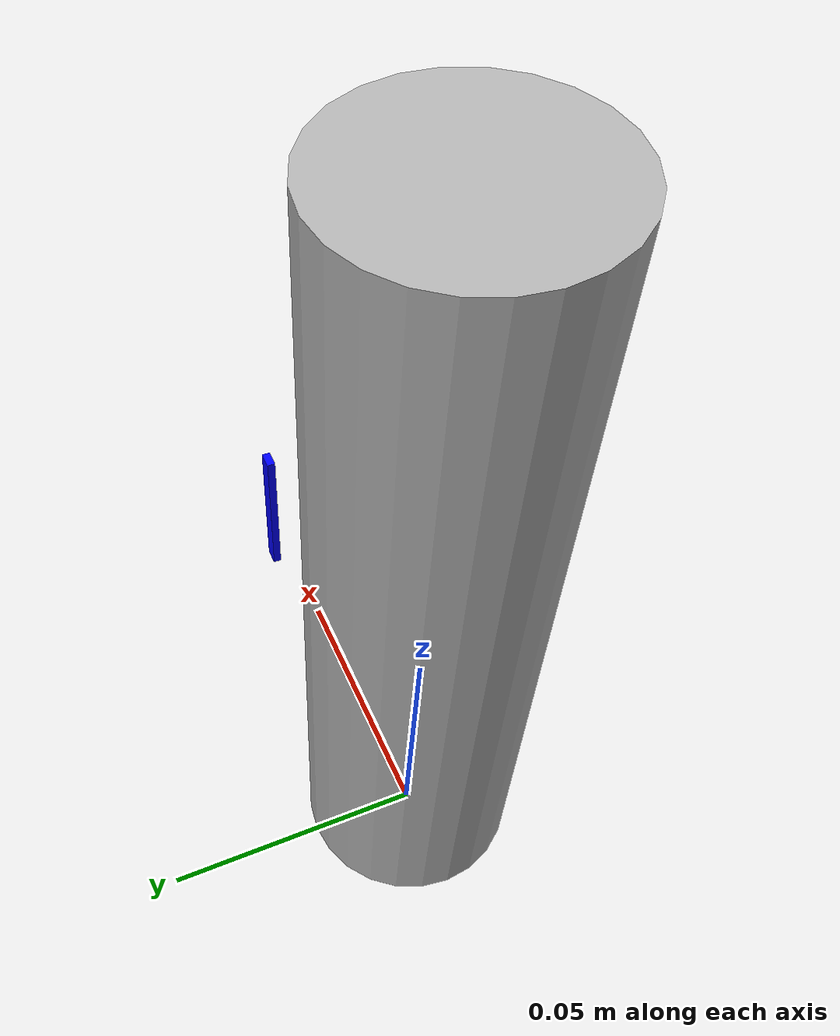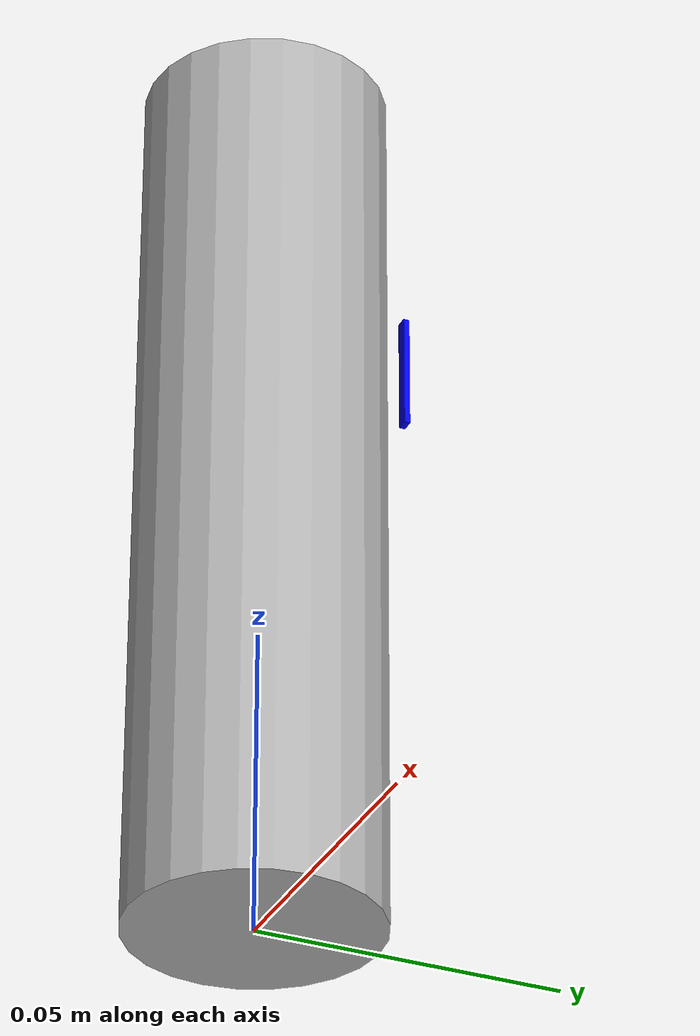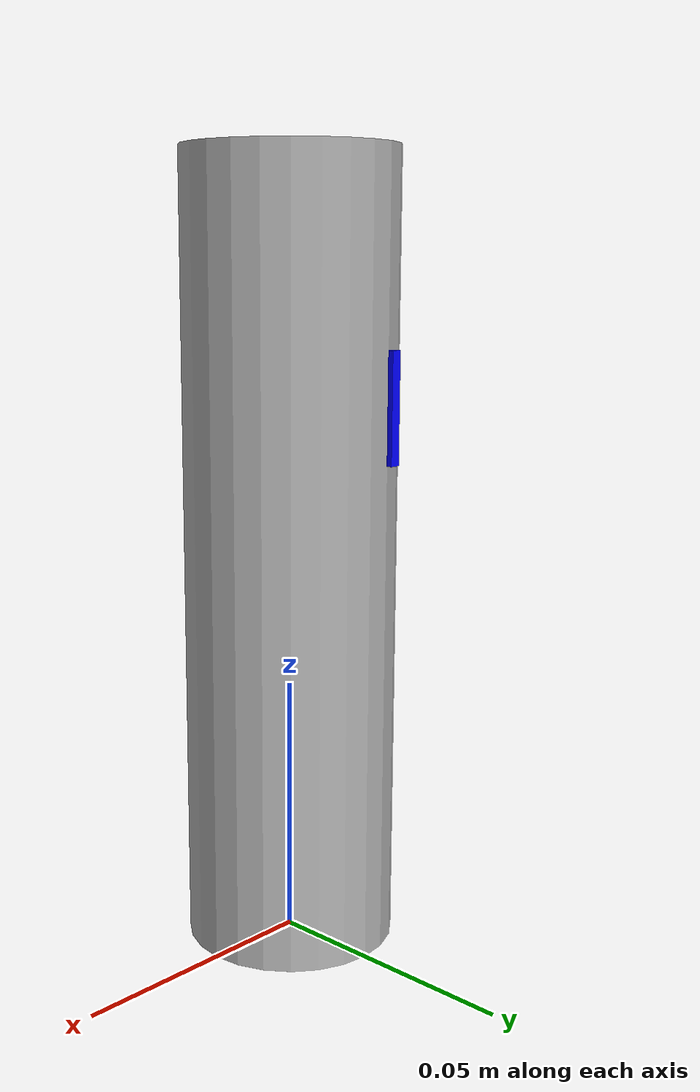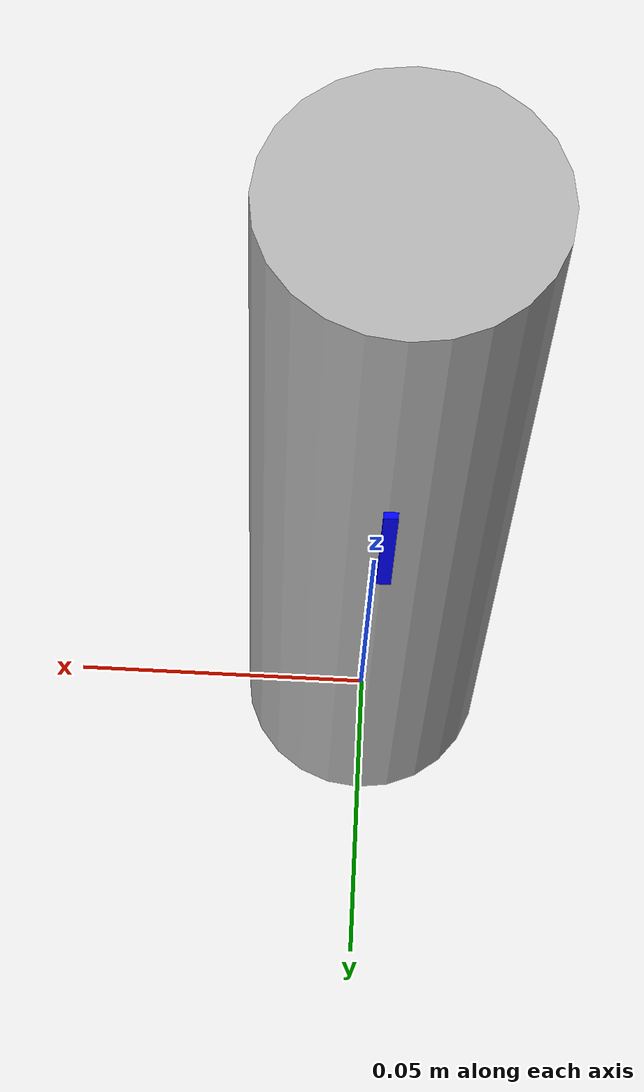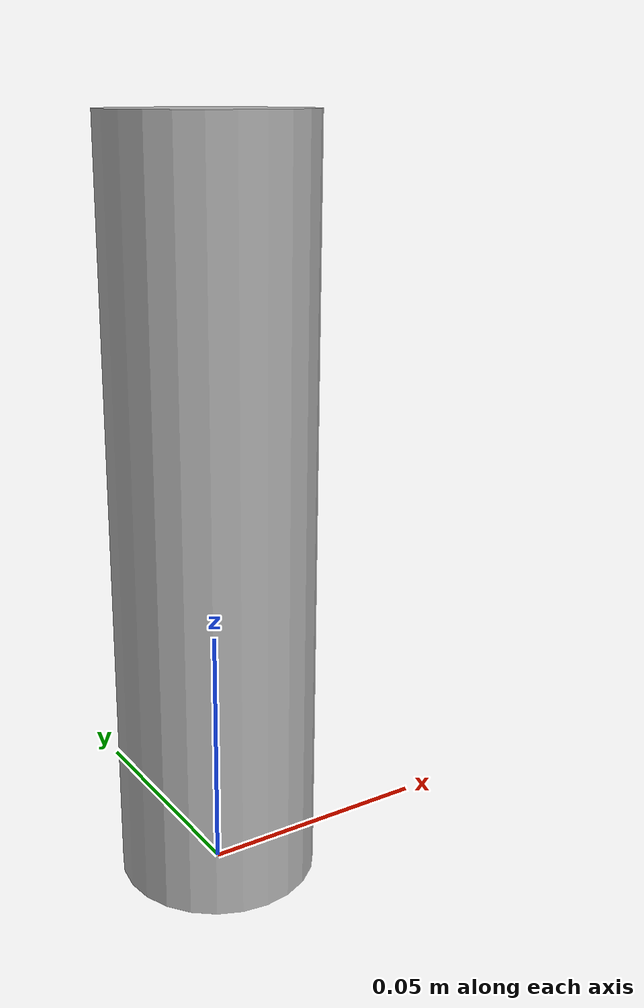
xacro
<?xml version="1.0"?>
<robot xmlns:xacro="http://ros.org/wiki/xacro" name="pipette">
  <xacro:arg name="parent" default="tool0"/>
  <xacro:arg name="serial_port" default="/dev/ttyUSB0"/>
  <xacro:arg name="baudrate" default="115200"/>
  <xacro:arg name="plunger_max" default="1.0"/>
  <xacro:arg name="tip_eject_max" default="1.0"/>
  <xacro:arg name="use_fake_hardware" default="true"/>

  <xacro:include filename="$(find pipette_description)/urdf/pipette_macro.urdf.xacro"/>

  <link name="$(arg parent)"/>
  <xacro:pipette
    name="pipette"
    prefix=""
    parent="$(arg parent)"
    serial_port="$(arg serial_port)"
    baudrate="$(arg baudrate)"
    plunger_max="$(arg plunger_max)"
    tip_eject_max="$(arg tip_eject_max)"
    use_fake_hardware="$(arg use_fake_hardware)"
  />
</robot>

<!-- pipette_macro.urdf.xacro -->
<robot xmlns:xacro="http://ros.org/wiki/xacro">
  <!--
    Static URDF description for pipette tool
    Replace placeholder meshes with your actual CAD files
  -->

  <xacro:macro
    name="pipette"
    params="name
            prefix
            parent
            pipette_mass:=0.200
            xyz:='0 0 0'
            rpy:='0 0 0'"
  >

    <!-- Pipette physical dimensions (adjust based on your CAD) -->
    <xacro:property name="pipette_length" value="0.15"/>  <!-- 15cm length -->
    <xacro:property name="pipette_radius" value="0.02"/>   <!-- 2cm radius -->

    <!-- Main attachment joint -->
    <joint name="${prefix}pipette_attachment_joint" type="fixed">
      <origin xyz="${xyz}" rpy="${rpy}"/>
      <parent link="${parent}"/>
      <child link="${prefix}pipette_base_link"/>
    </joint>

    <!-- Main pipette body -->
    <link name="${prefix}pipette_base_link">
      <visual>
        <origin xyz="0 0 ${pipette_length/2}" rpy="0 0 0"/>
        <geometry>
          <!-- Replace this cylinder with your CAD mesh -->
          <cylinder length="${pipette_length}" radius="${pipette_radius}"/>
        </geometry>
        <material name="pipette_gray">
          <color rgba="0.7 0.7 0.7 1.0"/>
        </material>
      </visual>

      <collision>
        <origin xyz="0 0 ${pipette_length/2}" rpy="0 0 0"/>
        <geometry>
          <!-- Replace this cylinder with simplified collision mesh -->
          <cylinder length="${pipette_length}" radius="${pipette_radius}"/>
        </geometry>
      </collision>

      <inertial>
        <origin xyz="0 0 ${pipette_length/2}" rpy="0 0 0"/>
        <mass value="${pipette_mass}"/>
        <inertia ixx="${pipette_mass * (3 * pipette_radius * pipette_radius + pipette_length * pipette_length) / 12}"
                 ixy="0.0"
                 ixz="0.0"
                 iyy="${pipette_mass * (3 * pipette_radius * pipette_radius + pipette_length * pipette_length) / 12}"
                 iyz="0.0"
                 izz="${pipette_mass * pipette_radius * pipette_radius / 2}"/>
      </inertial>
    </link>

    <!-- LED strip (visual element only) -->
    <joint name="${prefix}led_strip_joint" type="fixed">
      <origin xyz="0 ${pipette_radius + 0.005} ${pipette_length * 0.7}" rpy="0 0 0"/>
      <parent link="${prefix}pipette_base_link"/>
      <child link="${prefix}led_strip_link"/>
    </joint>

    <link name="${prefix}led_strip_link">
      <visual>
        <origin xyz="0 0 0" rpy="0 0 0"/>
        <geometry>
          <box size="0.002 0.001 0.02"/>  <!-- Small LED strip representation -->
        </geometry>
        <material name="led_strip">
          <color rgba="0.0 0.0 1.0 1.0"/>  <!-- Blue when off -->
        </material>
      </visual>
    </link>

    <!-- Conceptual plunger link for ros2_control (no visual representation) -->
    <!-- This represents the internal plunger mechanism -->
    <joint name="${prefix}plunger_joint" type="prismatic">
      <origin xyz="0 0 ${pipette_length}" rpy="0 0 0"/>
      <parent link="${prefix}pipette_base_link"/>
      <child link="${prefix}plunger_link"/>
      <axis xyz="0 0 1"/>  <!-- Z-axis movement (up/down) -->
      <limit effort="10.0" lower="0.0" upper="1.0" velocity="0.1"/>
    </joint>

    <link name="${prefix}plunger_link">
      <!-- No visual/collision geometry - this is handled by hardware interface -->
      <inertial>
        <origin xyz="0 0 0" rpy="0 0 0"/>
        <mass value="0.001"/>  <!-- Minimal mass -->
        <inertia ixx="1E-9" ixy="0.0" ixz="0.0" iyy="1E-9" iyz="0.0" izz="1E-9"/>
      </inertial>
    </link>

    <!-- Conceptual tip ejection link for ros2_control (no visual representation) -->
    <!-- This represents the tip ejection mechanism -->
    <joint name="${prefix}tip_eject_joint" type="prismatic">
      <origin xyz="0 0 ${pipette_length}" rpy="0 0 0"/>
      <parent link="${prefix}pipette_base_link"/>
      <child link="${prefix}tip_eject_link"/>
      <axis xyz="0 0 1"/>  <!-- Z-axis movement (up/down) -->
      <limit effort="5.0" lower="0.0" upper="1.0" velocity="0.1"/>
    </joint>

    <link name="${prefix}tip_eject_link">
      <!-- No visual/collision geometry - this is handled by hardware interface -->
      <inertial>
        <origin xyz="0 0 0" rpy="0 0 0"/>
        <mass value="0.001"/>  <!-- Minimal mass -->
        <inertia ixx="1E-9" ixy="0.0" ixz="0.0" iyy="1E-9" iyz="0.0" izz="1E-9"/>
      </inertial>
    </link>

    <!-- Tool tip reference frame -->
    <joint name="${prefix}pipette_tip_joint" type="fixed">
      <origin xyz="0 0 ${pipette_length}" rpy="0 0 0"/>
      <parent link="${prefix}pipette_base_link"/>
      <child link="${prefix}pipette_tip_link"/>
    </joint>

    <link name="${prefix}pipette_tip_link"/>

  </xacro:macro>
</robot>
